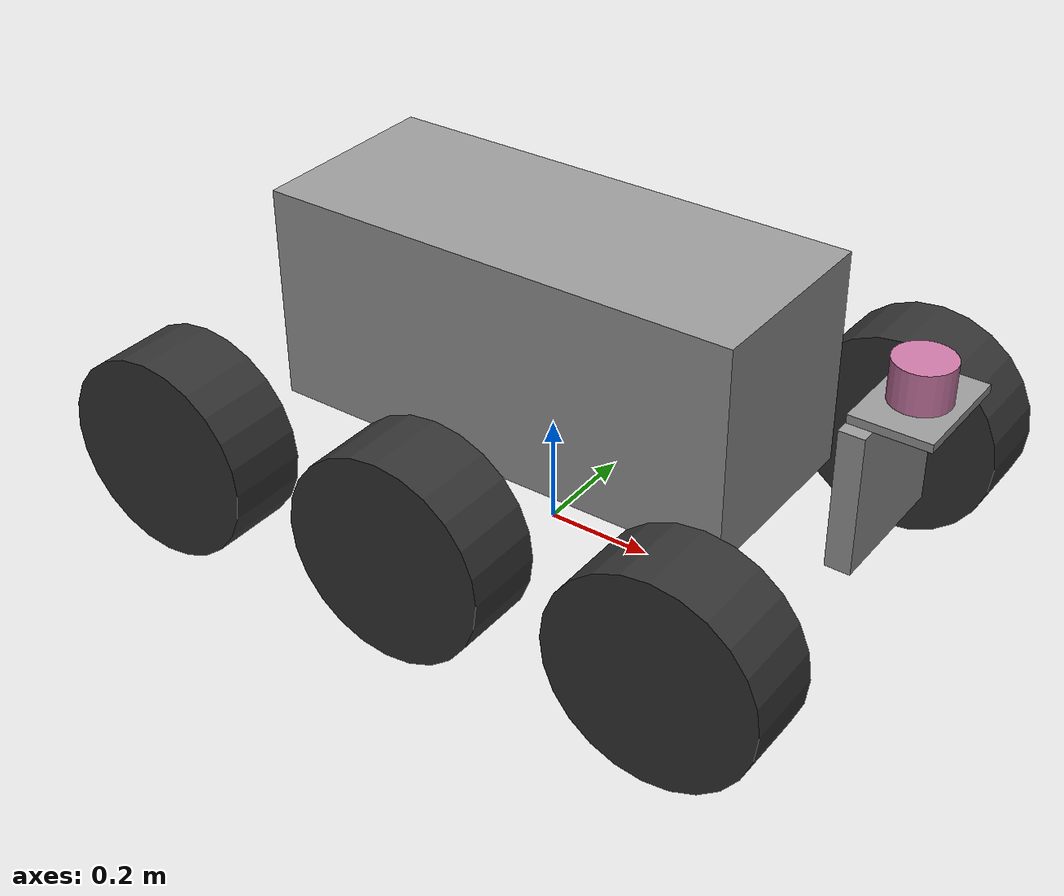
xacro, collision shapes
<?xml version="1.0"?>
<robot xmlns:xacro="http://www.ros.org/wiki/xacro" name="trk211">

  <!-- Включение файлов -->
  <xacro:include filename="chassis.xacro"/>
  <xacro:include filename="ros2_control.xacro"/>
  <xacro:include filename="imu.xacro"/>

  <xacro:include filename="$(find velodyne_description)/urdf/VLP-16.urdf.xacro"/>
  <xacro:VLP-16 parent="visionbox_link" name="velodyne"
          topic="/velodyne_points"
          hz="10" samples="400" gpu="true" min_range="0.1" min_angle="-${pi/2}" max_angle="${pi/2}">
    <origin xyz="0 0 ${visionbox_link_height/2}" rpy="0 0 0" />
  </xacro:VLP-16>

  <!--xacro:include filename="camera.xacro"/-->

</robot>

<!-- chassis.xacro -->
<robot xmlns:xacro="http://www.ros.org/wiki/xacro" name="chassis">

<!--collision contact_coefficients in gazebo-->

  <xacro:macro name="box_inertia" params="b_mass b_length b_width b_height">
    <inertial>
      <mass value="${b_mass}"/>
      <inertia ixx="${b_mass*(b_length*b_length+b_height*b_height)/12}" ixy="0.0" ixz="0.0"
               iyy="${b_mass*(b_width*b_width+b_height*b_height)/12}" iyz="0.0"
               izz="${b_mass*(b_length*b_length+b_width*b_width)/12}"/>
    </inertial>
  </xacro:macro>

  <xacro:macro name="cylinder_inertia" params="c_mass c_radius c_height">
    <inertial>
      <origin xyz="0 0 0" />
      <mass value="${c_mass}"/>
      <inertia ixx="${c_mass*(3*c_radius*c_radius+c_height*c_height)/12}" ixy="0.0" ixz="0.0"
               izz="${c_mass*(3*c_radius*c_radius+c_height*c_height)/12}" iyz="0.0"
               iyy="${c_mass*c_radius*c_radius/2}"/>
    </inertial>
  </xacro:macro>

  <xacro:property name="base_link_mass" value="103.5" /><!-- please correct this -->
  <xacro:property name="base_link_length" value="0.9" />
  <xacro:property name="base_link_width" value="0.37" />
  <xacro:property name="base_link_height" value="0.40" />
  <xacro:property name="ctrlbox_link_mass" value="0.23" /><!-- please correct this -->
  <xacro:property name="ctrlbox_link_length" value="0.045" />
  <xacro:property name="ctrlbox_link_width" value="0.25" />
  <xacro:property name="ctrlbox_link_height" value="0.25" />
  <xacro:property name="visionbox_link_mass" value="0.01" />
  <xacro:property name="visionbox_link_length" value="0.14" />
  <xacro:property name="visionbox_link_width" value="0.20" />
  <xacro:property name="visionbox_link_height" value="0.015" />
  <xacro:property name="wheel_mass" value="20.0" /><!-- please correct this -->
  <xacro:property name="wheel_radius" value="0.19" /><!-- please correct this -->
  <xacro:property name="wheel_height" value="0.15" /><!-- please correct this -->
  <xacro:property name="wheelbase" value="1.0" /><!-- please correct this -->
  <xacro:property name="track" value="0.8" />
  <xacro:property name="clearance" value="0.2" />
  <xacro:property name="wheel_vertical_offset" value="0.03282"/>

  <xacro:arg name="laser_rotation" default="false"/>

  <link name="root_link">
  </link>

      <!-- BASE_FOOTPRINT LINK -->

    <joint name="root_footprint_joint" type="fixed">
        <parent link="root_link"/>
        <child link="base_footprint"/>
        <origin xyz="0 0 0" rpy="0 0 0"/>
    </joint>

    <link name="base_footprint">
    </link>

  <joint name="base_to_root" type="fixed">
    <parent link="root_link"/>
    <child link="base_link"/>
    <origin xyz="0 0 ${base_link_height/2+clearance}" rpy="0 0 0"/>
  </joint>

  <xacro:macro name="base_link_geometry">
    <geometry>
      <box size="${base_link_length} ${base_link_width} ${base_link_height}"/>
    </geometry>
    <origin xyz="0 0 0" rpy="0 0 0" />
  </xacro:macro>

  <link name="base_link">
    <visual>
      <geometry>
        <mesh filename="file://$(find real_rover)/meshes/base.stl"/>
      </geometry>
      <material name="grey">
        <color rgba="0.6 0.6 0.6 1"/>
      </material>
      <origin xyz="0 0 0" rpy="0 0 ${pi/2}" />
    </visual>
    <collision>
      <xacro:base_link_geometry />
    </collision>
    <xacro:box_inertia
     b_mass="${base_link_mass}"
     b_length="${base_link_width}"
     b_width="${base_link_length}"
     b_height="${base_link_height}"/>
  </link>
  <gazebo reference="base_link">
    <material>Gazebo/RustySteel</material>
  </gazebo>

  <joint name="ctrlbox_to_base" type="fixed">
    <parent link="base_link"/>
    <child link="ctrlbox_link"/>
    <origin xyz="${base_link_length/2+ctrlbox_link_length/2+0.15} 0 ${ctrlbox_link_height/2+0.035-base_link_height/2}" rpy="0 0 0"/>
  </joint>

  <xacro:macro name="ctrlbox_link_geometry">
    <geometry>
      <box size="${ctrlbox_link_length} ${ctrlbox_link_width} ${ctrlbox_link_height}"/>
    </geometry>
    <origin xyz="0 0 0" rpy="0 0 0" />
  </xacro:macro>

  <link name="ctrlbox_link">
    <visual>
      <xacro:ctrlbox_link_geometry />
      <material name="grey">
        <color rgba="0.6 0.6 0.6 1"/>
      </material>
    </visual>
    <collision>
      <xacro:ctrlbox_link_geometry />
    </collision>
    <xacro:box_inertia
     b_mass="${ctrlbox_link_mass}"
     b_length="${ctrlbox_link_length}"
     b_width="${ctrlbox_link_width}"
     b_height="${ctrlbox_link_height}"/>
  </link>
  <gazebo reference="ctrlbox_link">
    <material>Gazebo/RustySteel</material>
  </gazebo>

  <xacro:macro name="visionbox_link_geometry">
        <geometry>
          <box size="${visionbox_link_length} ${visionbox_link_width} ${visionbox_link_height}"/>
        </geometry>
        <origin xyz="0 0 0" rpy="0 0 0" />
  </xacro:macro>

  <link name="visionbox_link">
    <visual>
      <xacro:visionbox_link_geometry />
      <material name="grey">
        <color rgba="0.6 0.6 0.6 1"/>
      </material>
    </visual>
    <collision>
      <xacro:visionbox_link_geometry />
    </collision>
    <xacro:box_inertia
     b_mass="${visionbox_link_mass}"
     b_length="${visionbox_link_length}"
     b_width="${visionbox_link_width}"
     b_height="${visionbox_link_height}"/>
  </link>
  <gazebo reference="visionbox_link">
    <material>Gazebo/RustySteel</material>
  </gazebo>

  <joint name="visionbox_to_ctrlbox" type="fixed">
    <parent link="ctrlbox_link"/>
    <child link="visionbox_link"/>
    <origin xyz="${visionbox_link_length/2 - ctrlbox_link_length/2}
		            0
		            ${ctrlbox_link_height/2+visionbox_link_height/2}" rpy="0 0 0"/>
  </joint>

  <link name="front_camera_link"></link>

  <joint name="ctrlbox_to_camera_link" type="fixed">
    <parent link="ctrlbox_link"/>
    <child link="front_camera_link"/>
    <origin xyz="${ctrlbox_link_length/2} 0.0 0.026" rpy="0 0 0"/>
  </joint>

  <xacro:macro name="wheel_joint" params="w_name origin_x origin_y origin_z geometry_yaw mu1 mu2">
    <link name="${w_name}_wheel">
      <visual>
        <geometry>
          <mesh filename="file://$(find real_rover)/meshes/wheel.stl"/>
        </geometry>
        <origin xyz="0 0 0" rpy="0 0 ${pi/2+geometry_yaw}"/>
        <material name="black">
          <color rgba="0.2 0.2 0.2 1"/>
        </material>
      </visual>
      <collision>
        <geometry>
          <cylinder length="${wheel_height}" radius="${wheel_radius}"/>
        </geometry>
        <origin xyz="0 0 0" rpy="${pi/2} 0 0"/>
      </collision>
      <xacro:cylinder_inertia
        c_mass="${wheel_mass}"
        c_radius="${wheel_radius}"
        c_height="${wheel_height}"/>
    </link>

    <joint name="base_to_${w_name}_wheel" type="continuous">
      <parent link="base_link"/>
      <child link="${w_name}_wheel"/>
      <axis xyz="0 1 0"/>
      <origin xyz="${origin_x} ${origin_y} ${origin_z}" rpy="0 0 0"/>

    </joint>

    <gazebo reference="${w_name}_wheel">
      <mu1 value="${mu1}"/>
      <mu2 value="${mu2}"/>
      <fdir1 value="0 0 0"/>

      <maxContacts value="1"/>
      <turnGravityOff>false</turnGravityOff>
      <material>Gazebo/DarkGrey</material>
    </gazebo>

  </xacro:macro>

  <xacro:wheel_joint
    w_name="left_forward"
    origin_y="${track/2}"
    origin_x="${wheelbase/2}"
    origin_z="${wheel_radius-base_link_height/2-clearance}"
    geometry_yaw="0"
    mu1="0.5"
    mu2="0.5"/>

  <xacro:wheel_joint
    w_name="left_middle"
    origin_y="${track/2}"
    origin_x="0"
    origin_z="${wheel_radius-base_link_height/2-clearance}"
    geometry_yaw="0"
    mu1="0.5"
    mu2="0.5"/>

  <xacro:wheel_joint
    w_name="left_rear"
    origin_y="${track/2}"
    origin_x="${-wheelbase/2}"
    origin_z="${wheel_radius-base_link_height/2-clearance}"
    geometry_yaw="0"
    mu1="0.5"
    mu2="0.5"/>

  <xacro:wheel_joint
    w_name="right_forward"
    origin_y="${-track/2}"
    origin_x="${wheelbase/2}"
    origin_z="${wheel_radius-base_link_height/2-clearance}"
    geometry_yaw="${pi}"
    mu1="0.5"
    mu2="0.5"/>

  <xacro:wheel_joint
    w_name="right_middle"
    origin_y="${-track/2}"
    origin_x="0"
    origin_z="${wheel_radius-base_link_height/2-clearance}"
    geometry_yaw="${pi}"
    mu1="0.5"
    mu2="0.5"/>

  <xacro:wheel_joint
    w_name="right_rear"
    origin_y="${-track/2}"
    origin_x="${-wheelbase/2}"
    origin_z="${wheel_radius-base_link_height/2-clearance}"
    geometry_yaw="${pi}"
    mu1="0.5"
    mu2="0.5"/>

  <!-- GPS -->
  <link name="gps_link"></link>

  <joint name="gps_joint" type="fixed">
    <parent link="ctrlbox_link"/>
    <child link="gps_link"/>
    <origin xyz="0 -0.1 0.105" rpy="0 0 0"/>
  </joint>

</robot>

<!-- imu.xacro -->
<robot xmlns:xacro="http://www.ros.org/wiki/xacro">

  <!-- Xsense -->
  <xacro:macro name="xsens_link_geometry">
    <geometry>
      <box size="0.001 0.001 0.001"/>
    </geometry>
    <origin xyz="0 0 0" rpy="0 0 0" />
  </xacro:macro>

  <link name="xsens_link">
    <visual>
      <xacro:xsens_link_geometry />
      <material name="grey">
        <color rgba="0.5 0.5 0.5 1"/>
      </material>
    </visual>
    <collision>
      <xacro:xsens_link_geometry />
    </collision>
    <xacro:box_inertia
     b_mass="0.1"
     b_length="0.1"
     b_width="0.1"
     b_height="0.1"/>
  </link>

  <joint name="xsens_joint" type="fixed">
    <parent link="ctrlbox_link"/>
    <child link="xsens_link"/>
    <origin xyz="0 0.08 ${0.01-ctrlbox_link_height/2}" rpy="0 0 0"/>
  </joint>
</robot>

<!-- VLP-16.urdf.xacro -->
<robot xmlns:xacro="http://www.ros.org/wiki/xacro" name="VLP-16">
  <xacro:property name="M_PI" value="3.1415926535897931" />
  <xacro:macro name="VLP-16" params="*origin parent:=base_link name:=velodyne tf_prefix:='' topic:=/velodyne_points organize_cloud:=false hz:=10 lasers:=16 samples:=1875 collision_range:=0.3 min_range:=0.9 max_range:=30.0 noise:=0.008 min_angle:=-${M_PI} max_angle:=${M_PI} gpu:=false">

    <joint name="${name}_base_mount_joint" type="fixed">
      <xacro:insert_block name="origin" />
      <parent link="${parent}"/>
      <child link="${name}_base_link"/>
    </joint>

    <link name="${name}_base_link">
      <inertial>
        <mass value="0.83"/>
        <origin xyz="0 0 0.03585"/>
        <inertia ixx="${(0.83 * (3.0*0.0516*0.0516 + 0.0717*0.0717)) / 12.0}" ixy="0" ixz="0"
          iyy="${(0.83 * (3.0*0.0516*0.0516 + 0.0717*0.0717)) / 12.0}" iyz="0"
          izz="${0.5 * 0.83 * (0.0516*0.0516)}"/>
      </inertial>
      <visual>
        <geometry>
          <mesh filename="package://velodyne_description/meshes/VLP16_base_1.dae" />
        </geometry>
      </visual>
      <visual>
        <geometry>
          <mesh filename="package://velodyne_description/meshes/VLP16_base_2.dae" />
        </geometry>
      </visual>
      <collision>
        <origin rpy="0 0 0" xyz="0 0 0.03585"/>
        <geometry>
          <cylinder radius="0.0516" length="0.0717"/>
        </geometry>
      </collision>
    </link>

    <joint name="${name}_base_scan_joint" type="fixed" >
      <origin xyz="0 0 0.0377" rpy="0 0 0" />
      <parent link="${name}_base_link" />
      <child link="${name}"/>
    </joint>

    <link name="${name}">
      <inertial>
        <mass value="0.01"/>
        <origin xyz="0 0 0"/>
        <inertia ixx="1e-7" ixy="0" ixz="0" iyy="1e-7" iyz="0" izz="1e-7"/>
      </inertial>
      <visual>
        <origin xyz="0 0 -0.0377" />
        <geometry>
          <mesh filename="package://velodyne_description/meshes/VLP16_scan.dae" />
        </geometry>
      </visual>
      <collision>
        <geometry>
          <sphere radius="0"/>
        </geometry>
      </collision>
    </link>

    <!-- Gazebo requires the velodyne_gazebo_plugins package -->
    <gazebo reference="${name}">
      <xacro:if value="${gpu}">
        <sensor type="gpu_ray" name="${name}-VLP16">
          <pose>0 0 0 0 0 0</pose>
          <visualize>false</visualize>
          <update_rate>${hz}</update_rate>
          <ray>
            <scan>
              <horizontal>
                <samples>${samples}</samples>
                <resolution>1</resolution>
                <min_angle>${min_angle}</min_angle>
                <max_angle>${max_angle}</max_angle>
              </horizontal>
              <vertical>
                <samples>${lasers}</samples>
                <resolution>1</resolution>
                <min_angle>-${15.0*M_PI/180.0}</min_angle>
                <max_angle> ${15.0*M_PI/180.0}</max_angle>
              </vertical>
            </scan>
            <range>
              <min>${collision_range}</min>
              <max>${max_range+1}</max>
              <resolution>0.001</resolution>
            </range>
            <noise>
              <type>gaussian</type>
              <mean>0.0</mean>
              <stddev>0.0</stddev>
            </noise>
          </ray>
          <plugin name="gazebo_ros_laser_controller" filename="libgazebo_ros_velodyne_laser.so">
            <ros>
              <namespace>/${name}</namespace>
              <remapping>~/out:=${topic}</remapping>
            </ros>
            <tf_prefix>${tf_prefix}</tf_prefix>
            <frame_name>${name}</frame_name>
            <organize_cloud>${organize_cloud}</organize_cloud>
            <min_range>${min_range}</min_range>
            <max_range>${max_range}</max_range>
            <gaussian_noise>${noise}</gaussian_noise>
          </plugin>
        </sensor>
      </xacro:if>
      <xacro:unless value="${gpu}">
        <sensor type="ray" name="${name}-VLP16">
          <pose>0 0 0 0 0 0</pose>
          <visualize>false</visualize>
          <update_rate>${hz}</update_rate>
          <ray>
            <scan>
              <horizontal>
                <samples>${samples}</samples>
                <resolution>1</resolution>
                <min_angle>${min_angle}</min_angle>
                <max_angle>${max_angle}</max_angle>
              </horizontal>
              <vertical>
                <samples>${lasers}</samples>
                <resolution>1</resolution>
                <min_angle>-${15.0*M_PI/180.0}</min_angle>
                <max_angle> ${15.0*M_PI/180.0}</max_angle>
              </vertical>
            </scan>
            <range>
              <min>${collision_range}</min>
              <max>${max_range+1}</max>
              <resolution>0.001</resolution>
            </range>
            <noise>
              <type>gaussian</type>
              <mean>0.0</mean>
              <stddev>0.0</stddev>
            </noise>
          </ray>
          <plugin name="gazebo_ros_laser_controller" filename="libgazebo_ros_velodyne_laser.so">
            <ros>
              <namespace>/${name}</namespace>
              <remapping>~/out:=${topic}</remapping>
            </ros>
            <tf_prefix>${tf_prefix}</tf_prefix>
            <frame_name>${name}</frame_name>
            <organize_cloud>${organize_cloud}</organize_cloud>
            <min_range>${min_range}</min_range>
            <max_range>${max_range}</max_range>
            <gaussian_noise>${noise}</gaussian_noise>
          </plugin>
        </sensor>
      </xacro:unless>
    </gazebo>

  </xacro:macro>
</robot>
